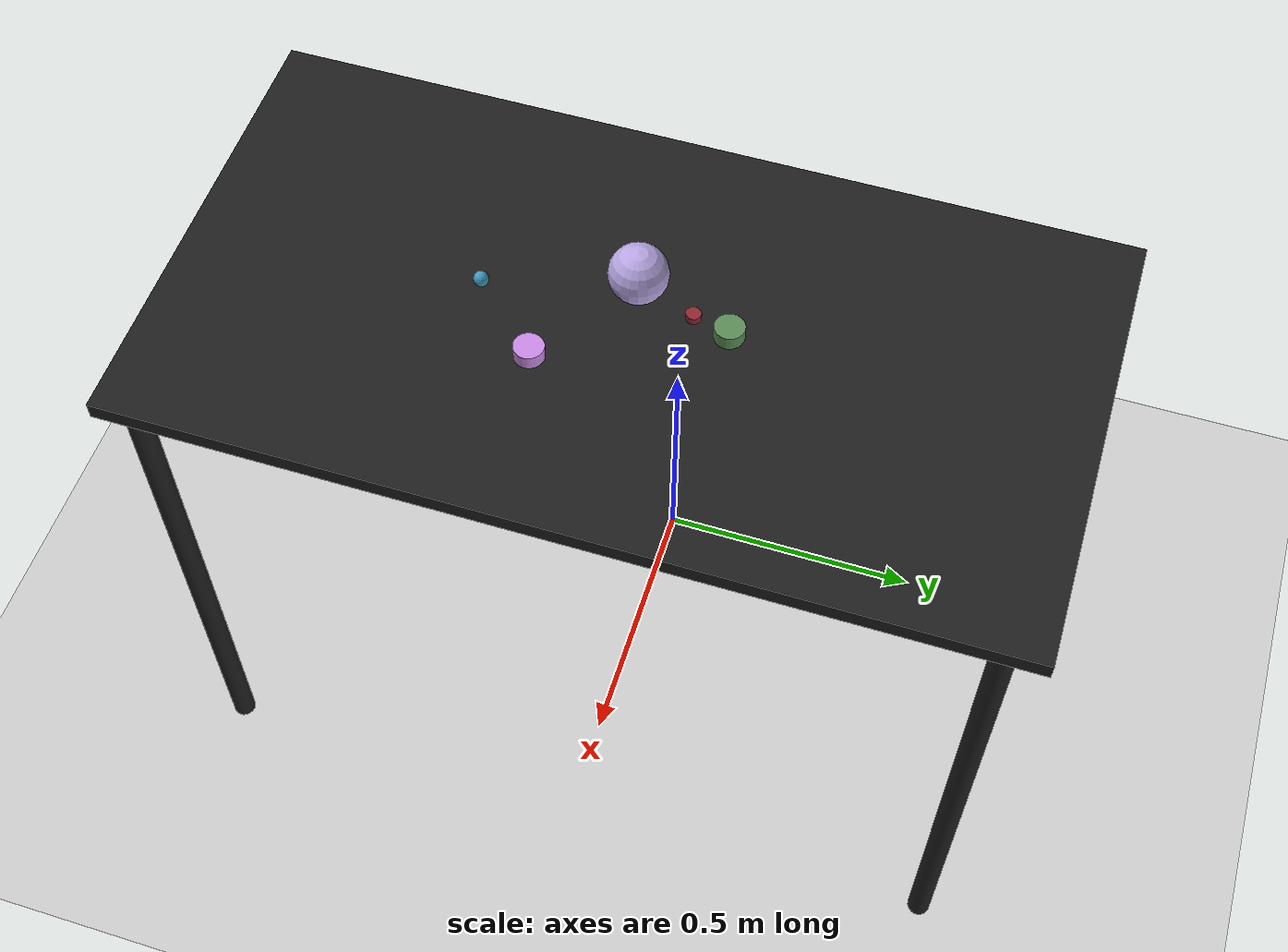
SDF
<?xml version="1.0" ?>
<sdf version="1.6">
  <world name="arm_world">
    <plugin filename="gz-sim-physics-system" name="gz::sim::systems::Physics">
      <engine>
        <filename>libgz-physics-bullet-featherstone-plugin.so</filename>
      </engine>
    </plugin>
    <plugin filename="gz-sim-user-commands-system" name="gz::sim::systems::UserCommands"/>
    <plugin filename="gz-sim-scene-broadcaster-system" name="gz::sim::systems::SceneBroadcaster"/>
    <plugin filename="gz-sim-sensors-system" name="gz::sim::systems::Sensors">
      <render_engine>ogre2</render_engine>
    </plugin>
    <gravity>0.0 0.0 -9.8</gravity>
    <scene>
      <shadows>false</shadows>
    </scene>
    <gui>
      <camera name="user_camera">
        <pose>0.75 -0.75 1.4 0 0.29 2.21</pose>
      </camera>
    </gui>
    <include>
      <uri>https://fuel.gazebosim.org/1.0/OpenRobotics/models/Sun</uri>
    </include>
    <model name="table">
      <static>true</static>
      <include>
        <uri>model://table</uri>
      </include>
      <pose>0.29 0 0 0 0 1.5708</pose>
    </model>
    <model name="ground_plane">
      <static>true</static>
      <link name="link">
        <collision name="collision">
          <geometry>
            <plane>
              <normal>0 0 1</normal>
            </plane>
          </geometry>
          <surface>
            <friction>
              <ode>
                <mu>1.0</mu>
                <mu2>1.0</mu2>
              </ode>
            </friction>
          </surface>
        </collision>
        <visual name="visual">
          <geometry>
            <plane>
              <normal>0 0 1</normal>
              <size>100 100</size>
            </plane>
          </geometry>
          <material>
            <ambient>0.8 0.8 0.8 1</ambient>
            <diffuse>0.8 0.8 0.8 1</diffuse>
            <specular>0.8 0.8 0.8 1</specular>
          </material>
        </visual>
      </link>
    </model>
    <model name="cylinder_m_0">
      <pose>0.411 -0.127 1.05 0 0 0.5</pose>
      <link name="cylinder_m_0_link">
        <inertial>
          <mass>0.05</mass>
          <inertia>
            <ixx>2.04e-7</ixx>
            <iyy>2.04e-7</iyy>
            <izz>3.9e-8</izz>
            <ixy>0</ixy>
            <ixz>0</ixz>
            <iyz>0</iyz>
          </inertia>
        </inertial>
        <collision name="cylinder_m_0_collision">
          <geometry>
            <cylinder>
              <radius>0.025</radius>
              <length>0.025</length>
            </cylinder>
          </geometry>
          <surface>
            <friction>
              <ode>
                <mu>0.8</mu>
                <mu2>0.8</mu2>
                <fdir1>0 0 1</fdir1>
                <slip1>0.001</slip1>
                <slip2>0.001</slip2>
              </ode>
              <torsional>
                <coefficient>0.1</coefficient>
                <surface_radius>0.015</surface_radius>
                <use_patch_radius>true</use_patch_radius>
              </torsional>
            </friction>
            <contact>
              <ode>
                <kp>1e5</kp>
                <kd>10</kd>
                <max_vel>0.1</max_vel>
                <min_depth>0.001</min_depth>
                <soft_cfm>0.01</soft_cfm>
                <soft_erp>0.2</soft_erp>
              </ode>
            </contact>
            <bounce>
              <restitution_coefficient>0.2</restitution_coefficient>
              <threshold>0.01</threshold>
            </bounce>
          </surface>
        </collision>
        <visual name="cylinder_m_0_visual">
          <geometry>
            <cylinder>
              <radius>0.025</radius>
              <length>0.025</length>
            </cylinder>
          </geometry>
          <material>
            <ambient>0.79 0.54 0.9 1</ambient>
            <diffuse>0.79 0.54 0.9 1</diffuse>
          </material>
        </visual>
        <velocity_decay>
          <linear>1</linear>
          <angular>1</angular>
        </velocity_decay>
      </link>
    </model>
    <model name="cylinder_s_1">
      <pose>0.269 0.095 1.05 0 0 1.65</pose>
      <link name="cylinder_s_1_link">
        <inertial>
          <mass>0.05</mass>
          <inertia>
            <ixx>2.04e-7</ixx>
            <iyy>2.04e-7</iyy>
            <izz>3.9e-8</izz>
            <ixy>0</ixy>
            <ixz>0</ixz>
            <iyz>0</iyz>
          </inertia>
        </inertial>
        <collision name="cylinder_s_1_collision">
          <geometry>
            <cylinder>
              <radius>0.0125</radius>
              <length>0.0125</length>
            </cylinder>
          </geometry>
          <surface>
            <friction>
              <ode>
                <mu>0.8</mu>
                <mu2>0.8</mu2>
                <fdir1>0 0 1</fdir1>
                <slip1>0.001</slip1>
                <slip2>0.001</slip2>
              </ode>
              <torsional>
                <coefficient>0.1</coefficient>
                <surface_radius>0.015</surface_radius>
                <use_patch_radius>true</use_patch_radius>
              </torsional>
            </friction>
            <contact>
              <ode>
                <kp>1e5</kp>
                <kd>10</kd>
                <max_vel>0.1</max_vel>
                <min_depth>0.001</min_depth>
                <soft_cfm>0.01</soft_cfm>
                <soft_erp>0.2</soft_erp>
              </ode>
            </contact>
            <bounce>
              <restitution_coefficient>0.2</restitution_coefficient>
              <threshold>0.01</threshold>
            </bounce>
          </surface>
        </collision>
        <visual name="cylinder_s_1_visual">
          <geometry>
            <cylinder>
              <radius>0.0125</radius>
              <length>0.0125</length>
            </cylinder>
          </geometry>
          <material>
            <ambient>0.56 0.15 0.19 1</ambient>
            <diffuse>0.56 0.15 0.19 1</diffuse>
          </material>
        </visual>
        <velocity_decay>
          <linear>1</linear>
          <angular>1</angular>
        </velocity_decay>
      </link>
    </model>
    <model name="sphere_l_2">
      <pose>0.214 -0.012 1.05 0 0 5.33</pose>
      <link name="sphere_l_2_link">
        <inertial>
          <mass>0.05</mass>
          <inertia>
            <ixx>2.04e-7</ixx>
            <iyy>2.04e-7</iyy>
            <izz>3.9e-8</izz>
            <ixy>0</ixy>
            <ixz>0</ixz>
            <iyz>0</iyz>
          </inertia>
        </inertial>
        <collision name="sphere_l_2_collision">
          <geometry>
            <sphere>
              <radius>0.05</radius>
            </sphere>
          </geometry>
          <surface>
            <friction>
              <ode>
                <mu>0.8</mu>
                <mu2>0.8</mu2>
                <fdir1>0 0 1</fdir1>
                <slip1>0.001</slip1>
                <slip2>0.001</slip2>
              </ode>
              <torsional>
                <coefficient>0.1</coefficient>
                <surface_radius>0.015</surface_radius>
                <use_patch_radius>true</use_patch_radius>
              </torsional>
            </friction>
            <contact>
              <ode>
                <kp>1e5</kp>
                <kd>10</kd>
                <max_vel>0.1</max_vel>
                <min_depth>0.001</min_depth>
                <soft_cfm>0.01</soft_cfm>
                <soft_erp>0.2</soft_erp>
              </ode>
            </contact>
            <bounce>
              <restitution_coefficient>0.2</restitution_coefficient>
              <threshold>0.01</threshold>
            </bounce>
          </surface>
        </collision>
        <visual name="sphere_l_2_visual">
          <geometry>
            <sphere>
              <radius>0.05</radius>
            </sphere>
          </geometry>
          <material>
            <ambient>0.72 0.65 0.89 1</ambient>
            <diffuse>0.72 0.65 0.89 1</diffuse>
          </material>
        </visual>
        <velocity_decay>
          <linear>1</linear>
          <angular>1</angular>
        </velocity_decay>
      </link>
    </model>
    <model name="sphere_s_3">
      <pose>0.299 -0.246 1.05 0 0 4.52</pose>
      <link name="sphere_s_3_link">
        <inertial>
          <mass>0.05</mass>
          <inertia>
            <ixx>2.04e-7</ixx>
            <iyy>2.04e-7</iyy>
            <izz>3.9e-8</izz>
            <ixy>0</ixy>
            <ixz>0</ixz>
            <iyz>0</iyz>
          </inertia>
        </inertial>
        <collision name="sphere_s_3_collision">
          <geometry>
            <sphere>
              <radius>0.0125</radius>
            </sphere>
          </geometry>
          <surface>
            <friction>
              <ode>
                <mu>0.8</mu>
                <mu2>0.8</mu2>
                <fdir1>0 0 1</fdir1>
                <slip1>0.001</slip1>
                <slip2>0.001</slip2>
              </ode>
              <torsional>
                <coefficient>0.1</coefficient>
                <surface_radius>0.015</surface_radius>
                <use_patch_radius>true</use_patch_radius>
              </torsional>
            </friction>
            <contact>
              <ode>
                <kp>1e5</kp>
                <kd>10</kd>
                <max_vel>0.1</max_vel>
                <min_depth>0.001</min_depth>
                <soft_cfm>0.01</soft_cfm>
                <soft_erp>0.2</soft_erp>
              </ode>
            </contact>
            <bounce>
              <restitution_coefficient>0.2</restitution_coefficient>
              <threshold>0.01</threshold>
            </bounce>
          </surface>
        </collision>
        <visual name="sphere_s_3_visual">
          <geometry>
            <sphere>
              <radius>0.0125</radius>
            </sphere>
          </geometry>
          <material>
            <ambient>0.24 0.6 0.73 1</ambient>
            <diffuse>0.24 0.6 0.73 1</diffuse>
          </material>
        </visual>
        <velocity_decay>
          <linear>1</linear>
          <angular>1</angular>
        </velocity_decay>
      </link>
    </model>
    <model name="cylinder_m_4">
      <pose>0.282 0.157 1.05 0 0 2.42</pose>
      <link name="cylinder_m_4_link">
        <inertial>
          <mass>0.05</mass>
          <inertia>
            <ixx>2.04e-7</ixx>
            <iyy>2.04e-7</iyy>
            <izz>3.9e-8</izz>
            <ixy>0</ixy>
            <ixz>0</ixz>
            <iyz>0</iyz>
          </inertia>
        </inertial>
        <collision name="cylinder_m_4_collision">
          <geometry>
            <cylinder>
              <radius>0.025</radius>
              <length>0.025</length>
            </cylinder>
          </geometry>
          <surface>
            <friction>
              <ode>
                <mu>0.8</mu>
                <mu2>0.8</mu2>
                <fdir1>0 0 1</fdir1>
                <slip1>0.001</slip1>
                <slip2>0.001</slip2>
              </ode>
              <torsional>
                <coefficient>0.1</coefficient>
                <surface_radius>0.015</surface_radius>
                <use_patch_radius>true</use_patch_radius>
              </torsional>
            </friction>
            <contact>
              <ode>
                <kp>1e5</kp>
                <kd>10</kd>
                <max_vel>0.1</max_vel>
                <min_depth>0.001</min_depth>
                <soft_cfm>0.01</soft_cfm>
                <soft_erp>0.2</soft_erp>
              </ode>
            </contact>
            <bounce>
              <restitution_coefficient>0.2</restitution_coefficient>
              <threshold>0.01</threshold>
            </bounce>
          </surface>
        </collision>
        <visual name="cylinder_m_4_visual">
          <geometry>
            <cylinder>
              <radius>0.025</radius>
              <length>0.025</length>
            </cylinder>
          </geometry>
          <material>
            <ambient>0.36 0.55 0.34 1</ambient>
            <diffuse>0.36 0.55 0.34 1</diffuse>
          </material>
        </visual>
        <velocity_decay>
          <linear>1</linear>
          <angular>1</angular>
        </velocity_decay>
      </link>
    </model>
  </world>
</sdf>

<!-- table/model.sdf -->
<sdf version="1.5">
  <model name="table">
    <static>true</static>
    <link name="link">
      <collision name="surface">
        <pose>0 0 1.0 0 0 0</pose>
        <geometry>
          <box>
            <size>1.5 0.8 0.03</size>
          </box>
        </geometry>
        <surface>
          <friction>
            <ode>
              <mu>0.6</mu>
              <mu2>0.6</mu2>
            </ode>
          </friction>
        </surface>
      </collision>
      <visual name="surface">
        <pose>0 0 1.0 0 0 0</pose>
        <geometry>
          <box>
            <size>1.5 0.8 0.03</size>
          </box>
        </geometry>
        <material>
          <script>
            <uri>file://media/materials/scripts/gazebo.material</uri>
            <name>Gazebo/Black</name>
          </script>
        </material>
      </visual>
      <collision name="front_left_leg">
        <pose>0.68 0.38 0.5 0 0 0</pose>
        <geometry>
          <cylinder>
            <radius>0.02</radius>
            <length>1.0</length>
          </cylinder>
        </geometry>
      </collision>
      <visual name="front_left_leg">
        <pose>0.68 0.38 0.5 0 0 0</pose>
        <geometry>
          <cylinder>
            <radius>0.02</radius>
            <length>1.0</length>
          </cylinder>
        </geometry>
        <material>
          <script>
            <uri>file://media/materials/scripts/gazebo.material</uri>
            <name>Gazebo/Black</name>
          </script>
        </material>
      </visual>
      <collision name="front_right_leg">
        <pose>0.68 -0.38 0.5 0 0 0</pose>
        <geometry>
          <cylinder>
            <radius>0.02</radius>
            <length>1.0</length>
          </cylinder>
        </geometry>
      </collision>
      <visual name="front_right_leg">
        <pose>0.68 -0.38 0.5 0 0 0</pose>
        <geometry>
          <cylinder>
            <radius>0.02</radius>
            <length>1.0</length>
          </cylinder>
        </geometry>
        <material>
          <script>
            <uri>file://media/materials/scripts/gazebo.material</uri>
            <name>Gazebo/Black</name>
          </script>
        </material>
      </visual>
      <collision name="back_right_leg">
        <pose>-0.68 -0.38 0.5 0 0 0</pose>
        <geometry>
          <cylinder>
            <radius>0.02</radius>
            <length>1.0</length>
          </cylinder>
        </geometry>
      </collision>
      <visual name="back_right_leg">
        <pose>-0.68 -0.38 0.5 0 0 0</pose>
        <geometry>
          <cylinder>
            <radius>0.02</radius>
            <length>1.0</length>
          </cylinder>
        </geometry>
        <material>
          <script>
            <uri>file://media/materials/scripts/gazebo.material</uri>
            <name>Gazebo/Black</name>
          </script>
        </material>
      </visual>
      <collision name="back_left_leg">
        <pose>-0.68 0.38 0.5 0 0 0</pose>
        <geometry>
          <cylinder>
            <radius>0.02</radius>
            <length>1.0</length>
          </cylinder>
        </geometry>
      </collision>
      <visual name="back_left_leg">
        <pose>-0.68 0.38 0.5 0 0 0</pose>
        <geometry>
          <cylinder>
            <radius>0.02</radius>
            <length>1.0</length>
          </cylinder>
        </geometry>
        <material>
          <script>
            <uri>file://media/materials/scripts/gazebo.material</uri>
            <name>Gazebo/Black</name>
          </script>
        </material>
      </visual>
    </link>
  </model>
</sdf>
